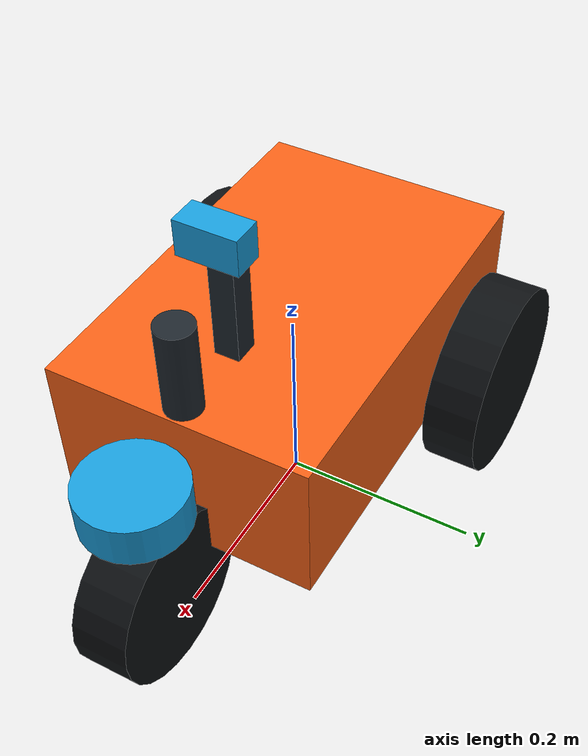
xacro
<?xml version="1.0"?>
<robot xmlns:xacro="http://www.ros.org/wiki/xacro" name="tricycle_3w">
  <xacro:property name="chassis_length" value="0.40"/>
  <xacro:property name="chassis_width" value="0.26"/>
  <xacro:property name="chassis_height" value="0.15"/>
  <xacro:property name="chassis_mass" value="5.0"/>
  <xacro:property name="rear_wheel_radius" value="0.10"/>
  <xacro:property name="front_wheel_radius" value="0.085"/>
  <xacro:property name="wheel_width" value="0.055"/>
  <xacro:property name="wheel_mass" value="0.35"/>
  <xacro:property name="rear_wheel_x" value="-0.13"/>
  <xacro:property
    name="rear_wheel_y"
    value="${chassis_width / 2 + wheel_width / 2}"/>
  <xacro:property name="front_wheel_x" value="0.25"/>
  <xacro:property name="chassis_center_z" value="${rear_wheel_radius + chassis_height / 2}"/>

  <material name="chassis_orange">
    <color rgba="0.96 0.38 0.09 1"/>
  </material>
  <material name="wheel_rubber">
    <color rgba="0.055 0.065 0.075 1"/>
  </material>
  <material name="sensor_dark">
    <color rgba="0.12 0.15 0.18 1"/>
  </material>
  <material name="sensor_glass">
    <color rgba="0.10 0.62 0.86 1"/>
  </material>

  <xacro:macro name="box_inertial" params="mass x y z origin_z:=0">
    <inertial>
      <origin xyz="0 0 ${origin_z}" rpy="0 0 0"/>
      <mass value="${mass}"/>
      <inertia
        ixx="${mass * (y * y + z * z) / 12}"
        ixy="0" ixz="0"
        iyy="${mass * (x * x + z * z) / 12}"
        iyz="0"
        izz="${mass * (x * x + y * y) / 12}"/>
    </inertial>
  </xacro:macro>

  <xacro:macro name="wheel" params="name radius parent xyz steering:=false">
    <link name="${name}">
      <visual>
        <origin xyz="0 0 0" rpy="${pi / 2} 0 0"/>
        <geometry>
          <cylinder radius="${radius}" length="${wheel_width}"/>
        </geometry>
        <material name="wheel_rubber"/>
      </visual>
      <collision>
        <origin xyz="0 0 0" rpy="${pi / 2} 0 0"/>
        <geometry>
          <cylinder radius="${radius}" length="${wheel_width}"/>
        </geometry>
      </collision>
      <inertial>
        <mass value="${wheel_mass}"/>
        <inertia
          ixx="${wheel_mass * (3 * radius * radius + wheel_width * wheel_width) / 12}"
          ixy="0" ixz="0"
          iyy="${wheel_mass * radius * radius / 2}"
          iyz="0"
          izz="${wheel_mass * (3 * radius * radius + wheel_width * wheel_width) / 12}"/>
      </inertial>
    </link>
    <joint name="${name}_joint" type="continuous">
      <parent link="${parent}"/>
      <child link="${name}"/>
      <origin xyz="${xyz}" rpy="0 0 0"/>
      <axis xyz="0 1 0"/>
    </joint>
  </xacro:macro>

  <link name="base_footprint"/>
  <joint name="base_footprint_joint" type="fixed">
    <parent link="base_footprint"/>
    <child link="base_link"/>
    <origin xyz="0 0 0" rpy="0 0 0"/>
  </joint>

  <link name="base_link">
    <visual>
      <origin xyz="0 0 ${chassis_center_z}" rpy="0 0 0"/>
      <geometry>
        <box size="${chassis_length} ${chassis_width} ${chassis_height}"/>
      </geometry>
      <material name="chassis_orange"/>
    </visual>
    <collision>
      <origin xyz="0 0 ${chassis_center_z}" rpy="0 0 0"/>
      <geometry>
        <box size="${chassis_length} ${chassis_width} ${chassis_height}"/>
      </geometry>
    </collision>
    <xacro:box_inertial
      mass="${chassis_mass}"
      x="${chassis_length}"
      y="${chassis_width}"
      z="${chassis_height}"
      origin_z="${chassis_center_z}"/>
  </link>

  <xacro:wheel
    name="rear_left_wheel"
    radius="${rear_wheel_radius}"
    parent="base_link"
    xyz="${rear_wheel_x} ${rear_wheel_y} ${rear_wheel_radius}"/>
  <xacro:wheel
    name="rear_right_wheel"
    radius="${rear_wheel_radius}"
    parent="base_link"
    xyz="${rear_wheel_x} ${-rear_wheel_y} ${rear_wheel_radius}"/>

  <link name="steering_fork">
    <visual>
      <origin xyz="0 0 0.045" rpy="0 0 0"/>
      <geometry>
        <box size="0.035 0.035 0.16"/>
      </geometry>
      <material name="sensor_dark"/>
    </visual>
    <xacro:box_inertial mass="0.20" x="0.035" y="0.035" z="0.16" origin_z="0.045"/>
  </link>
  <joint name="steering_joint" type="revolute">
    <parent link="base_link"/>
    <child link="steering_fork"/>
    <origin xyz="${front_wheel_x} 0 ${front_wheel_radius}" rpy="0 0 0"/>
    <axis xyz="0 0 1"/>
    <limit lower="-0.75" upper="0.75" effort="20" velocity="2.5"/>
  </joint>
  <xacro:wheel
    name="front_wheel"
    radius="${front_wheel_radius}"
    parent="steering_fork"
    xyz="0 0 0"/>

  <link name="lidar_mount">
    <visual>
      <origin xyz="0 0 0.045" rpy="0 0 0"/>
      <geometry>
        <cylinder radius="0.018" length="0.09"/>
      </geometry>
      <material name="sensor_dark"/>
    </visual>
  </link>
  <joint name="lidar_mount_joint" type="fixed">
    <parent link="base_link"/>
    <child link="lidar_mount"/>
    <origin xyz="0.18 0 ${chassis_center_z + chassis_height / 2}" rpy="0 0 0"/>
  </joint>

  <link name="laser">
    <visual>
      <geometry>
        <cylinder radius="0.05" length="0.04"/>
      </geometry>
      <material name="sensor_glass"/>
    </visual>
    <collision>
      <geometry>
        <cylinder radius="0.05" length="0.04"/>
      </geometry>
    </collision>
  </link>
  <joint name="laser_joint" type="fixed">
    <parent link="base_link"/>
    <child link="laser"/>
    <origin xyz="0.26 0 0.212" rpy="0 0 0"/>
  </joint>

  <link name="camera_mast">
    <visual>
      <origin xyz="0 0 0.06" rpy="0 0 0"/>
      <geometry>
        <box size="0.025 0.025 0.12"/>
      </geometry>
      <material name="sensor_dark"/>
    </visual>
  </link>
  <joint name="camera_mast_joint" type="fixed">
    <parent link="base_link"/>
    <child link="camera_mast"/>
    <origin xyz="0.10 0 ${chassis_center_z + chassis_height / 2}" rpy="0 0 0"/>
  </joint>

  <link name="camera_link">
    <visual>
      <geometry>
        <box size="0.03 0.06 0.035"/>
      </geometry>
      <material name="sensor_glass"/>
    </visual>
  </link>
  <joint name="camera_joint" type="fixed">
    <parent link="camera_mast"/>
    <child link="camera_link"/>
    <origin xyz="0.015 0 0.13" rpy="0 0 0"/>
  </joint>
</robot>
